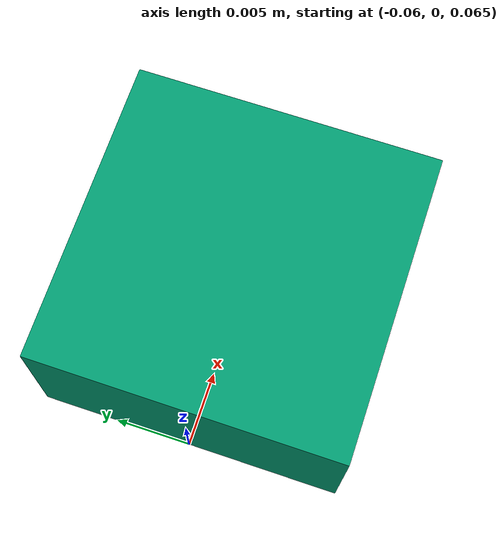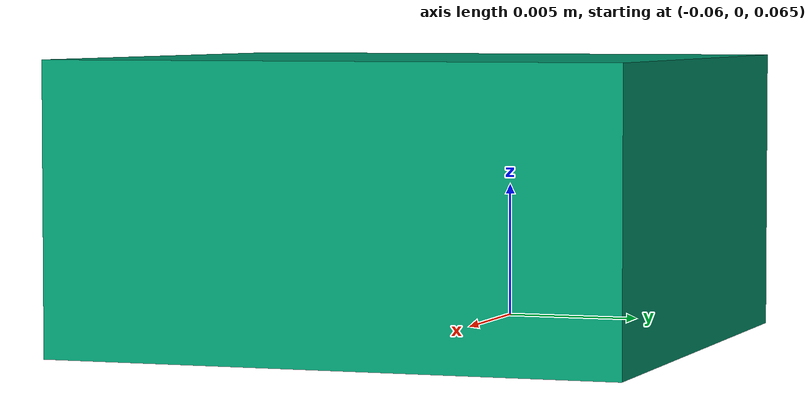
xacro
<?xml version="1.0"?>
<robot xmlns:xacro="http://www.ros.org/wiki/xacro" name="delivery_robot">

  <!-- include utils FIRST -->
  <xacro:include filename="$(find delivery_description)/urdf/utils.xacro"/>

  <!-- robot size -->
  <xacro:property name="robot_length" value="0.40"/>
  <xacro:property name="robot_width"  value="0.30"/>

  <!-- wheel params -->
  <xacro:property name="wheel_radius" value="0.033"/>
  <xacro:property name="wheel_separation" value="0.355"/>
  <xacro:property name="wheel_y" value="${wheel_separation/2.0}"/>
  <xacro:property name="wheel_x" value="0.0"/>
  <xacro:property name="wheel_axis_z" value="-0.017"/>

  <!-- LiDAR pose -->
  <xacro:property name="lidar_x" value="0.1125"/>
  <xacro:property name="lidar_y" value="0.0"/>
  <xacro:property name="lidar_z" value="0.245"/>

  <!-- degrees only -->
  <xacro:property name="lidar_roll_deg"  value="0"/>
  <xacro:property name="lidar_pitch_deg" value="0"/>
  <xacro:property name="lidar_yaw_deg"   value="0"/>

  <!-- include parts -->
  <xacro:include filename="$(find delivery_description)/urdf/base.xacro"/>
  <xacro:include filename="$(find delivery_description)/urdf/wheels.xacro"/>
  <xacro:include filename="$(find delivery_description)/urdf/lidar.xacro"/>
  <xacro:include filename="$(find delivery_description)/urdf/imu.xacro"/>

  <!-- call macros -->
  <xacro:base/>

  <!-- IMU -->
  <xacro:add_imu
    parent="base_link"
    imu_name="bno055"
    xyz="-0.05 0.0 0.02"
    rpy="0 0 0"/>

  <!-- wheels -->
  <xacro:wheels
    wheel_x="${wheel_x}"
    wheel_y="${wheel_y}"
    wheel_axis_z="${wheel_axis_z}"/>

  <!-- lidar -->
  <xacro:lidar
    lidar_x="${lidar_x}" lidar_y="${lidar_y}" lidar_z="${lidar_z}"
    lidar_roll_deg="${lidar_roll_deg}" lidar_pitch_deg="${lidar_pitch_deg}" lidar_yaw_deg="${lidar_yaw_deg}"/>

</robot>

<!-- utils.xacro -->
<robot xmlns:xacro="http://www.ros.org/wiki/xacro">

  <!-- constants -->
  <xacro:property name="PI" value="3.141592653589793"/>
  <xacro:property name="D2R" value="${PI/180.0}"/>

</robot>

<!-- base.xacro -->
<robot xmlns:xacro="http://www.ros.org/wiki/xacro">

  <xacro:macro name="base">
    <link name="base_footprint"/>
    <link name="base_link"/>

    <joint name="base_footprint_to_base_link" type="fixed">
      <parent link="base_footprint"/>
      <child link="base_link"/>
      <origin xyz="0 0 0.05" rpy="0 0 0"/>
    </joint>
  </xacro:macro>

</robot>

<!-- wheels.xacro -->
<robot xmlns:xacro="http://www.ros.org/wiki/xacro">

  <xacro:macro name="wheels" params="wheel_x wheel_y wheel_axis_z">

    <link name="left_wheel_link"/>
    <link name="right_wheel_link"/>

    <joint name="left_wheel_joint" type="continuous">
      <parent link="base_link"/>
      <child link="left_wheel_link"/>
      <origin xyz="${wheel_x} ${wheel_y} ${wheel_axis_z}" rpy="0 0 0"/>
      <axis xyz="0 1 0"/>
    </joint>

    <joint name="right_wheel_joint" type="continuous">
      <parent link="base_link"/>
      <child link="right_wheel_link"/>
      <origin xyz="${wheel_x} -${wheel_y} ${wheel_axis_z}" rpy="0 0 0"/>
      <axis xyz="0 1 0"/>
    </joint>

  </xacro:macro>

</robot>

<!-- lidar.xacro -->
<robot xmlns:xacro="http://www.ros.org/wiki/xacro">

  <xacro:macro name="lidar" params="lidar_x lidar_y lidar_z lidar_roll_deg lidar_pitch_deg lidar_yaw_deg">
    <link name="lidar_link"/>

    <joint name="base_to_lidar" type="fixed">
      <parent link="base_link"/>
      <child link="lidar_link"/>
      <origin
        xyz="${lidar_x} ${lidar_y} ${lidar_z}"
        rpy="${lidar_roll_deg*D2R} ${lidar_pitch_deg*D2R} ${lidar_yaw_deg*D2R}"/>
    </joint>
  </xacro:macro>

</robot>

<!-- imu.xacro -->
<robot xmlns:xacro="http://ros.org/wiki/xacro">

  <!-- IMU link + fixed joint -->
  <xacro:macro name="add_imu" params="
      parent:=base_link
      imu_name:=bno055
      xyz:='0 0 0'
      rpy:='0 0 0'">

    <link name="${imu_name}_link">
      <inertial>
        <origin xyz="0 0 0" rpy="0 0 0"/>
        <mass value="0.05"/>
        <inertia ixx="1e-4" ixy="0" ixz="0" iyy="1e-4" iyz="0" izz="1e-4"/>
      </inertial>
      <visual>
        <origin xyz="0 0 0" rpy="0 0 0"/>
        <geometry>
          <box size="0.02 0.02 0.01"/>
        </geometry>
      </visual>
    </link>

    <joint name="${imu_name}_joint" type="fixed">
      <parent link="${parent}"/>
      <child link="${imu_name}_link"/>
      <origin xyz="${xyz}" rpy="${rpy}"/>
    </joint>

  </xacro:macro>

</robot>
